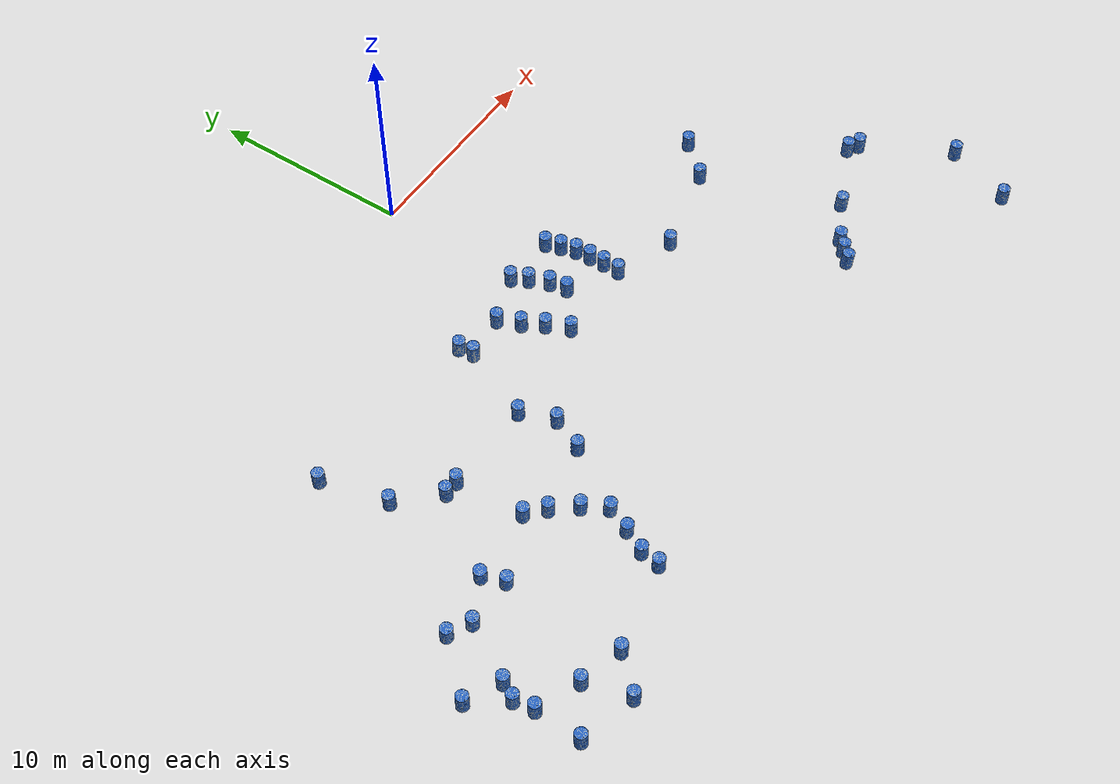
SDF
<sdf version="1.6">
 <world name="default">
  <model name="barrel_16">
   <link name="link">
    <inertial>
     <mass>500</mass>
     <inertia><ixx>51.2096</ixx><iyy>51.2096</iyy><izz>25</izz><ixy>0</ixy><ixz>0</ixz><iyz>0</iyz></inertia>
    </inertial>
    <collision name="collision">
     <geometry><mesh><uri>model://barrel/meshes/barrel.dae</uri><scale>1 1 1</scale></mesh></geometry>
    </collision>
    <visual name="visual">
     <geometry><mesh><uri>model://barrel/meshes/barrel.dae</uri><scale>1 1 1</scale></mesh></geometry>
    </visual>
   </link>
   <pose>-6.64602 -12.0896 -0.065877 0.021904 -0.000621 -0.000895</pose>
  </model>
  <model name="barrel_17">
   <link name="link">
    <inertial>
     <mass>500</mass>
     <inertia><ixx>51.2096</ixx><iyy>51.2096</iyy><izz>25</izz><ixy>0</ixy><ixz>0</ixz><iyz>0</iyz></inertia>
    </inertial>
    <collision name="collision">
     <geometry><mesh><uri>model://barrel/meshes/barrel.dae</uri><scale>1 1 1</scale></mesh></geometry>
    </collision>
    <visual name="visual">
     <geometry><mesh><uri>model://barrel/meshes/barrel.dae</uri><scale>1 1 1</scale></mesh></geometry>
    </visual>
   </link>
   <pose>-6.01499 -13.7526 -0.092026 0.011651 -0.003126 -0.001076</pose>
  </model>
  <model name="barrel_21">
   <link name="link">
    <inertial>
     <mass>500</mass>
     <inertia><ixx>51.2096</ixx><iyy>51.2096</iyy><izz>25</izz><ixy>0</ixy><ixz>0</ixz><iyz>0</iyz></inertia>
    </inertial>
    <collision name="collision">
     <geometry><mesh><uri>model://barrel/meshes/barrel.dae</uri><scale>1 1 1</scale></mesh></geometry>
    </collision>
    <visual name="visual">
     <geometry><mesh><uri>model://barrel/meshes/barrel.dae</uri><scale>1 1 1</scale></mesh></geometry>
    </visual>
   </link>
   <pose>11.2531 -9.72098 0.001207 -0.000622 0.003513 1.9e-05</pose>
  </model>
  <model name="barrel_22">
   <link name="link">
    <inertial>
     <mass>500</mass>
     <inertia><ixx>51.2096</ixx><iyy>51.2096</iyy><izz>25</izz><ixy>0</ixy><ixz>0</ixz><iyz>0</iyz></inertia>
    </inertial>
    <collision name="collision">
     <geometry><mesh><uri>model://barrel/meshes/barrel.dae</uri><scale>1 1 1</scale></mesh></geometry>
    </collision>
    <visual name="visual">
     <geometry><mesh><uri>model://barrel/meshes/barrel.dae</uri><scale>1 1 1</scale></mesh></geometry>
    </visual>
   </link>
   <pose>15.4375 -16.2895 -0.228445 0.025489 0.015645 0.000221</pose>
  </model>
  <model name="barrel_23">
   <link name="link">
    <inertial>
     <mass>500</mass>
     <inertia><ixx>51.2096</ixx><iyy>51.2096</iyy><izz>25</izz><ixy>0</ixy><ixz>0</ixz><iyz>0</iyz></inertia>
    </inertial>
    <collision name="collision">
     <geometry><mesh><uri>model://barrel/meshes/barrel.dae</uri><scale>1 1 1</scale></mesh></geometry>
    </collision>
    <visual name="visual">
     <geometry><mesh><uri>model://barrel/meshes/barrel.dae</uri><scale>1 1 1</scale></mesh></geometry>
    </visual>
   </link>
   <pose>15.9884 -16.6115 -0.243718 0.024704 0.011043 0.004901</pose>
  </model>
  <model name="barrel_24">
   <link name="link">
    <inertial>
     <mass>500</mass>
     <inertia><ixx>51.2096</ixx><iyy>51.2096</iyy><izz>25</izz><ixy>0</ixy><ixz>0</ixz><iyz>0</iyz></inertia>
    </inertial>
    <collision name="collision">
     <geometry><mesh><uri>model://barrel/meshes/barrel.dae</uri><scale>1 1 1</scale></mesh></geometry>
    </collision>
    <visual name="visual">
     <geometry><mesh><uri>model://barrel/meshes/barrel.dae</uri><scale>1 1 1</scale></mesh></geometry>
    </visual>
   </link>
   <pose>18.3608 -20.6973 -0.45242 0.015842 0.026169 -0.001995</pose>
  </model>
  <model name="barrel_25">
   <link name="link">
    <inertial>
     <mass>500</mass>
     <inertia><ixx>51.2096</ixx><iyy>51.2096</iyy><izz>25</izz><ixy>0</ixy><ixz>0</ixz><iyz>0</iyz></inertia>
    </inertial>
    <collision name="collision">
     <geometry><mesh><uri>model://barrel/meshes/barrel.dae</uri><scale>1 1 1</scale></mesh></geometry>
    </collision>
    <visual name="visual">
     <geometry><mesh><uri>model://barrel/meshes/barrel.dae</uri><scale>1 1 1</scale></mesh></geometry>
    </visual>
   </link>
   <pose>17.0741 -23.9449 -0.466777 0.016096 0.014441 -0.00362</pose>
  </model>
  <model name="barrel_26">
   <link name="link">
    <inertial>
     <mass>500</mass>
     <inertia><ixx>51.2096</ixx><iyy>51.2096</iyy><izz>25</izz><ixy>0</ixy><ixz>0</ixz><iyz>0</iyz></inertia>
    </inertial>
    <collision name="collision">
     <geometry><mesh><uri>model://barrel/meshes/barrel.dae</uri><scale>1 1 1</scale></mesh></geometry>
    </collision>
    <visual name="visual">
     <geometry><mesh><uri>model://barrel/meshes/barrel.dae</uri><scale>1 1 1</scale></mesh></geometry>
    </visual>
   </link>
   <pose>12.1238 -17.7903 -0.194908 0.052107 0.034637 -0.033032</pose>
  </model>
  <model name="barrel_27">
   <link name="link">
    <inertial>
     <mass>500</mass>
     <inertia><ixx>51.2096</ixx><iyy>51.2096</iyy><izz>25</izz><ixy>0</ixy><ixz>0</ixz><iyz>0</iyz></inertia>
    </inertial>
    <collision name="collision">
     <geometry><mesh><uri>model://barrel/meshes/barrel.dae</uri><scale>1 1 1</scale></mesh></geometry>
    </collision>
    <visual name="visual">
     <geometry><mesh><uri>model://barrel/meshes/barrel.dae</uri><scale>1 1 1</scale></mesh></geometry>
    </visual>
   </link>
   <pose>10.1544 -18.8418 -0.192373 0.050254 0.017038 -0.013136</pose>
  </model>
  <model name="barrel_28">
   <link name="link">
    <inertial>
     <mass>500</mass>
     <inertia><ixx>51.2096</ixx><iyy>51.2096</iyy><izz>25</izz><ixy>0</ixy><ixz>0</ixz><iyz>0</iyz></inertia>
    </inertial>
    <collision name="collision">
     <geometry><mesh><uri>model://barrel/meshes/barrel.dae</uri><scale>1 1 1</scale></mesh></geometry>
    </collision>
    <visual name="visual">
     <geometry><mesh><uri>model://barrel/meshes/barrel.dae</uri><scale>1 1 1</scale></mesh></geometry>
    </visual>
   </link>
   <pose>9.65125 -19.314 -0.207993 0.050227 0.017133 -0.015108</pose>
  </model>
  <model name="barrel_29">
   <link name="link">
    <inertial>
     <mass>500</mass>
     <inertia><ixx>51.2096</ixx><iyy>51.2096</iyy><izz>25</izz><ixy>0</ixy><ixz>0</ixz><iyz>0</iyz></inertia>
    </inertial>
    <collision name="collision">
     <geometry><mesh><uri>model://barrel/meshes/barrel.dae</uri><scale>1 1 1</scale></mesh></geometry>
    </collision>
    <visual name="visual">
     <geometry><mesh><uri>model://barrel/meshes/barrel.dae</uri><scale>1 1 1</scale></mesh></geometry>
    </visual>
   </link>
   <pose>9.18372 -19.7763 -0.227088 0.070803 0.016683 -0.010783</pose>
  </model>
  <model name="barrel_30">
   <link name="link">
    <inertial>
     <mass>500</mass>
     <inertia><ixx>51.2096</ixx><iyy>51.2096</iyy><izz>25</izz><ixy>0</ixy><ixz>0</ixz><iyz>0</iyz></inertia>
    </inertial>
    <collision name="collision">
     <geometry><mesh><uri>model://barrel/meshes/barrel.dae</uri><scale>1 1 1</scale></mesh></geometry>
    </collision>
    <visual name="visual">
     <geometry><mesh><uri>model://barrel/meshes/barrel.dae</uri><scale>1 1 1</scale></mesh></geometry>
    </visual>
   </link>
   <pose>9.74218 -11.3225 0.02096 -0.012189 0.00495 -1.7e-05</pose>
  </model>
  <model name="barrel_31">
   <link name="link">
    <inertial>
     <mass>500</mass>
     <inertia><ixx>51.2096</ixx><iyy>51.2096</iyy><izz>25</izz><ixy>0</ixy><ixz>0</ixz><iyz>0</iyz></inertia>
    </inertial>
    <collision name="collision">
     <geometry><mesh><uri>model://barrel/meshes/barrel.dae</uri><scale>1 1 1</scale></mesh></geometry>
    </collision>
    <visual name="visual">
     <geometry><mesh><uri>model://barrel/meshes/barrel.dae</uri><scale>1 1 1</scale></mesh></geometry>
    </visual>
   </link>
   <pose>5.39296 -12.4014 0.018129 0.010171 -0.002475 7.6e-05</pose>
  </model>
  <model name="barrel_32">
   <link name="link">
    <inertial>
     <mass>500</mass>
     <inertia><ixx>51.2096</ixx><iyy>51.2096</iyy><izz>25</izz><ixy>0</ixy><ixz>0</ixz><iyz>0</iyz></inertia>
    </inertial>
    <collision name="collision">
     <geometry><mesh><uri>model://barrel/meshes/barrel.dae</uri><scale>1 1 1</scale></mesh></geometry>
    </collision>
    <visual name="visual">
     <geometry><mesh><uri>model://barrel/meshes/barrel.dae</uri><scale>1 1 1</scale></mesh></geometry>
    </visual>
   </link>
   <pose>2.55652 -11.3385 0.015993 0.012526 -0.012887 2.5e-05</pose>
  </model>
  <model name="barrel_33">
   <link name="link">
    <inertial>
     <mass>500</mass>
     <inertia><ixx>51.2096</ixx><iyy>51.2096</iyy><izz>25</izz><ixy>0</ixy><ixz>0</ixz><iyz>0</iyz></inertia>
    </inertial>
    <collision name="collision">
     <geometry><mesh><uri>model://barrel/meshes/barrel.dae</uri><scale>1 1 1</scale></mesh></geometry>
    </collision>
    <visual name="visual">
     <geometry><mesh><uri>model://barrel/meshes/barrel.dae</uri><scale>1 1 1</scale></mesh></geometry>
    </visual>
   </link>
   <pose>2.56652 -10.5277 0.02611 0.012632 -0.011815 -2e-06</pose>
  </model>
  <model name="barrel_34">
   <link name="link">
    <inertial>
     <mass>500</mass>
     <inertia><ixx>51.2096</ixx><iyy>51.2096</iyy><izz>25</izz><ixy>0</ixy><ixz>0</ixz><iyz>0</iyz></inertia>
    </inertial>
    <collision name="collision">
     <geometry><mesh><uri>model://barrel/meshes/barrel.dae</uri><scale>1 1 1</scale></mesh></geometry>
    </collision>
    <visual name="visual">
     <geometry><mesh><uri>model://barrel/meshes/barrel.dae</uri><scale>1 1 1</scale></mesh></geometry>
    </visual>
   </link>
   <pose>2.52148 -9.78355 0.036837 0.01914 -0.013142 -0.000263</pose>
  </model>
  <model name="barrel_35">
   <link name="link">
    <inertial>
     <mass>500</mass>
     <inertia><ixx>51.2096</ixx><iyy>51.2096</iyy><izz>25</izz><ixy>0</ixy><ixz>0</ixz><iyz>0</iyz></inertia>
    </inertial>
    <collision name="collision">
     <geometry><mesh><uri>model://barrel/meshes/barrel.dae</uri><scale>1 1 1</scale></mesh></geometry>
    </collision>
    <visual name="visual">
     <geometry><mesh><uri>model://barrel/meshes/barrel.dae</uri><scale>1 1 1</scale></mesh></geometry>
    </visual>
   </link>
   <pose>2.41641 -8.98886 0.052496 0.02482 -0.009879 -0.161014</pose>
  </model>
  <model name="barrel_36">
   <link name="link">
    <inertial>
     <mass>500</mass>
     <inertia><ixx>51.2096</ixx><iyy>51.2096</iyy><izz>25</izz><ixy>0</ixy><ixz>0</ixz><iyz>0</iyz></inertia>
    </inertial>
    <collision name="collision">
     <geometry><mesh><uri>model://barrel/meshes/barrel.dae</uri><scale>1 1 1</scale></mesh></geometry>
    </collision>
    <visual name="visual">
     <geometry><mesh><uri>model://barrel/meshes/barrel.dae</uri><scale>1 1 1</scale></mesh></geometry>
    </visual>
   </link>
   <pose>2.18789 -8.24474 0.066415 0.025572 -0.007711 -0.246792</pose>
  </model>
  <model name="barrel_37">
   <link name="link">
    <inertial>
     <mass>500</mass>
     <inertia><ixx>51.2096</ixx><iyy>51.2096</iyy><izz>25</izz><ixy>0</ixy><ixz>0</ixz><iyz>0</iyz></inertia>
    </inertial>
    <collision name="collision">
     <geometry><mesh><uri>model://barrel/meshes/barrel.dae</uri><scale>1 1 1</scale></mesh></geometry>
    </collision>
    <visual name="visual">
     <geometry><mesh><uri>model://barrel/meshes/barrel.dae</uri><scale>1 1 1</scale></mesh></geometry>
    </visual>
   </link>
   <pose>2.00718 -7.6034 0.074873 0.005774 -0.016323 -0.021645</pose>
  </model>
  <model name="barrel_38">
   <link name="link">
    <inertial>
     <mass>500</mass>
     <inertia><ixx>51.2096</ixx><iyy>51.2096</iyy><izz>25</izz><ixy>0</ixy><ixz>0</ixz><iyz>0</iyz></inertia>
    </inertial>
    <collision name="collision">
     <geometry><mesh><uri>model://barrel/meshes/barrel.dae</uri><scale>1 1 1</scale></mesh></geometry>
    </collision>
    <visual name="visual">
     <geometry><mesh><uri>model://barrel/meshes/barrel.dae</uri><scale>1 1 1</scale></mesh></geometry>
    </visual>
   </link>
   <pose>0.345676 -9.95051 0.00928 0.015744 -0.011044 -7e-06</pose>
  </model>
  <model name="barrel_39">
   <link name="link">
    <inertial>
     <mass>500</mass>
     <inertia><ixx>51.2096</ixx><iyy>51.2096</iyy><izz>25</izz><ixy>0</ixy><ixz>0</ixz><iyz>0</iyz></inertia>
    </inertial>
    <collision name="collision">
     <geometry><mesh><uri>model://barrel/meshes/barrel.dae</uri><scale>1 1 1</scale></mesh></geometry>
    </collision>
    <visual name="visual">
     <geometry><mesh><uri>model://barrel/meshes/barrel.dae</uri><scale>1 1 1</scale></mesh></geometry>
    </visual>
   </link>
   <pose>0.194539 -9.10177 0.021509 0.016684 -0.010967 6.1e-05</pose>
  </model>
  <model name="barrel_40">
   <link name="link">
    <inertial>
     <mass>500</mass>
     <inertia><ixx>51.2096</ixx><iyy>51.2096</iyy><izz>25</izz><ixy>0</ixy><ixz>0</ixz><iyz>0</iyz></inertia>
    </inertial>
    <collision name="collision">
     <geometry><mesh><uri>model://barrel/meshes/barrel.dae</uri><scale>1 1 1</scale></mesh></geometry>
    </collision>
    <visual name="visual">
     <geometry><mesh><uri>model://barrel/meshes/barrel.dae</uri><scale>1 1 1</scale></mesh></geometry>
    </visual>
   </link>
   <pose>-0.196327 -8.1814 0.035138 0.022914 -0.013727 -0.000318</pose>
  </model>
  <model name="barrel_41">
   <link name="link">
    <inertial>
     <mass>500</mass>
     <inertia><ixx>51.2096</ixx><iyy>51.2096</iyy><izz>25</izz><ixy>0</ixy><ixz>0</ixz><iyz>0</iyz></inertia>
    </inertial>
    <collision name="collision">
     <geometry><mesh><uri>model://barrel/meshes/barrel.dae</uri><scale>1 1 1</scale></mesh></geometry>
    </collision>
    <visual name="visual">
     <geometry><mesh><uri>model://barrel/meshes/barrel.dae</uri><scale>1 1 1</scale></mesh></geometry>
    </visual>
   </link>
   <pose>-0.593189 -7.45294 0.033692 0.006171 -0.013896 0.000365</pose>
  </model>
  <model name="barrel_45">
   <link name="link">
    <inertial>
     <mass>500</mass>
     <inertia><ixx>51.2096</ixx><iyy>51.2096</iyy><izz>25</izz><ixy>0</ixy><ixz>0</ixz><iyz>0</iyz></inertia>
    </inertial>
    <collision name="collision">
     <geometry><mesh><uri>model://barrel/meshes/barrel.dae</uri><scale>1 1 1</scale></mesh></geometry>
    </collision>
    <visual name="visual">
     <geometry><mesh><uri>model://barrel/meshes/barrel.dae</uri><scale>1 1 1</scale></mesh></geometry>
    </visual>
   </link>
   <pose>-1.45042 -11.4062 -0.033602 0.015768 -0.011614 0.001184</pose>
  </model>
  <model name="barrel_46">
   <link name="link">
    <inertial>
     <mass>500</mass>
     <inertia><ixx>51.2096</ixx><iyy>51.2096</iyy><izz>25</izz><ixy>0</ixy><ixz>0</ixz><iyz>0</iyz></inertia>
    </inertial>
    <collision name="collision">
     <geometry><mesh><uri>model://barrel/meshes/barrel.dae</uri><scale>1 1 1</scale></mesh></geometry>
    </collision>
    <visual name="visual">
     <geometry><mesh><uri>model://barrel/meshes/barrel.dae</uri><scale>1 1 1</scale></mesh></geometry>
    </visual>
   </link>
   <pose>-1.94725 -10.3264 -0.019928 0.019597 -0.007616 0.000982</pose>
  </model>
  <model name="barrel_47">
   <link name="link">
    <inertial>
     <mass>500</mass>
     <inertia><ixx>51.2096</ixx><iyy>51.2096</iyy><izz>25</izz><ixy>0</ixy><ixz>0</ixz><iyz>0</iyz></inertia>
    </inertial>
    <collision name="collision">
     <geometry><mesh><uri>model://barrel/meshes/barrel.dae</uri><scale>1 1 1</scale></mesh></geometry>
    </collision>
    <visual name="visual">
     <geometry><mesh><uri>model://barrel/meshes/barrel.dae</uri><scale>1 1 1</scale></mesh></geometry>
    </visual>
   </link>
   <pose>-2.50828 -9.3786 -0.00491 0.020369 -0.007217 0.000659</pose>
  </model>
  <model name="barrel_48">
   <link name="link">
    <inertial>
     <mass>500</mass>
     <inertia><ixx>51.2096</ixx><iyy>51.2096</iyy><izz>25</izz><ixy>0</ixy><ixz>0</ixz><iyz>0</iyz></inertia>
    </inertial>
    <collision name="collision">
     <geometry><mesh><uri>model://barrel/meshes/barrel.dae</uri><scale>1 1 1</scale></mesh></geometry>
    </collision>
    <visual name="visual">
     <geometry><mesh><uri>model://barrel/meshes/barrel.dae</uri><scale>1 1 1</scale></mesh></geometry>
    </visual>
   </link>
   <pose>-2.95911 -8.31217 0.018698 0.030407 0.002928 -0.001487</pose>
  </model>
  <model name="barrel_49">
   <link name="link">
    <inertial>
     <mass>500</mass>
     <inertia><ixx>51.2096</ixx><iyy>51.2096</iyy><izz>25</izz><ixy>0</ixy><ixz>0</ixz><iyz>0</iyz></inertia>
    </inertial>
    <collision name="collision">
     <geometry><mesh><uri>model://barrel/meshes/barrel.dae</uri><scale>1 1 1</scale></mesh></geometry>
    </collision>
    <visual name="visual">
     <geometry><mesh><uri>model://barrel/meshes/barrel.dae</uri><scale>1 1 1</scale></mesh></geometry>
    </visual>
   </link>
   <pose>-5.12662 -8.55463 0.022376 0.032821 0.006745 0.00065</pose>
  </model>
  <model name="barrel_50">
   <link name="link">
    <inertial>
     <mass>500</mass>
     <inertia><ixx>51.2096</ixx><iyy>51.2096</iyy><izz>25</izz><ixy>0</ixy><ixz>0</ixz><iyz>0</iyz></inertia>
    </inertial>
    <collision name="collision">
     <geometry><mesh><uri>model://barrel/meshes/barrel.dae</uri><scale>1 1 1</scale></mesh></geometry>
    </collision>
    <visual name="visual">
     <geometry><mesh><uri>model://barrel/meshes/barrel.dae</uri><scale>1 1 1</scale></mesh></geometry>
    </visual>
   </link>
   <pose>-5.21125 -7.86601 0.047058 0.038472 0.003077 0.096041</pose>
  </model>
  <model name="barrel_51">
   <link name="link">
    <inertial>
     <mass>500</mass>
     <inertia><ixx>51.2096</ixx><iyy>51.2096</iyy><izz>25</izz><ixy>0</ixy><ixz>0</ixz><iyz>0</iyz></inertia>
    </inertial>
    <collision name="collision">
     <geometry><mesh><uri>model://barrel/meshes/barrel.dae</uri><scale>1 1 1</scale></mesh></geometry>
    </collision>
    <visual name="visual">
     <geometry><mesh><uri>model://barrel/meshes/barrel.dae</uri><scale>1 1 1</scale></mesh></geometry>
    </visual>
   </link>
   <pose>-6.72808 -15.3163 -0.115707 0.014954 -0.00473 -0.000122</pose>
  </model>
  <model name="barrel_52">
   <link name="link">
    <inertial>
     <mass>500</mass>
     <inertia><ixx>51.2096</ixx><iyy>51.2096</iyy><izz>25</izz><ixy>0</ixy><ixz>0</ixz><iyz>0</iyz></inertia>
    </inertial>
    <collision name="collision">
     <geometry><mesh><uri>model://barrel/meshes/barrel.dae</uri><scale>1 1 1</scale></mesh></geometry>
    </collision>
    <visual name="visual">
     <geometry><mesh><uri>model://barrel/meshes/barrel.dae</uri><scale>1 1 1</scale></mesh></geometry>
    </visual>
   </link>
   <pose>-10.8975 -15.3032 -0.124026 0.033459 0.001308 -0.004688</pose>
  </model>
  <model name="barrel_53">
   <link name="link">
    <inertial>
     <mass>500</mass>
     <inertia><ixx>51.2096</ixx><iyy>51.2096</iyy><izz>25</izz><ixy>0</ixy><ixz>0</ixz><iyz>0</iyz></inertia>
    </inertial>
    <collision name="collision">
     <geometry><mesh><uri>model://barrel/meshes/barrel.dae</uri><scale>1 1 1</scale></mesh></geometry>
    </collision>
    <visual name="visual">
     <geometry><mesh><uri>model://barrel/meshes/barrel.dae</uri><scale>1 1 1</scale></mesh></geometry>
    </visual>
   </link>
   <pose>-10.0733 -16.0535 -0.139344 0.027143 -0.010919 -0.000439</pose>
  </model>
  <model name="barrel_54">
   <link name="link">
    <inertial>
     <mass>500</mass>
     <inertia><ixx>51.2096</ixx><iyy>51.2096</iyy><izz>25</izz><ixy>0</ixy><ixz>0</ixz><iyz>0</iyz></inertia>
    </inertial>
    <collision name="collision">
     <geometry><mesh><uri>model://barrel/meshes/barrel.dae</uri><scale>1 1 1</scale></mesh></geometry>
    </collision>
    <visual name="visual">
     <geometry><mesh><uri>model://barrel/meshes/barrel.dae</uri><scale>1 1 1</scale></mesh></geometry>
    </visual>
   </link>
   <pose>-9.21448 -17.1241 -0.161573 0.048807 -0.01323 -0.032807</pose>
  </model>
  <model name="barrel_55">
   <link name="link">
    <inertial>
     <mass>500</mass>
     <inertia><ixx>51.2096</ixx><iyy>51.2096</iyy><izz>25</izz><ixy>0</ixy><ixz>0</ixz><iyz>0</iyz></inertia>
    </inertial>
    <collision name="collision">
     <geometry><mesh><uri>model://barrel/meshes/barrel.dae</uri><scale>1 1 1</scale></mesh></geometry>
    </collision>
    <visual name="visual">
     <geometry><mesh><uri>model://barrel/meshes/barrel.dae</uri><scale>1 1 1</scale></mesh></geometry>
    </visual>
   </link>
   <pose>-8.55343 -18.2093 -0.206495 0.082826 -0.037746 -0.033733</pose>
  </model>
  <model name="barrel_56">
   <link name="link">
    <inertial>
     <mass>500</mass>
     <inertia><ixx>51.2096</ixx><iyy>51.2096</iyy><izz>25</izz><ixy>0</ixy><ixz>0</ixz><iyz>0</iyz></inertia>
    </inertial>
    <collision name="collision">
     <geometry><mesh><uri>model://barrel/meshes/barrel.dae</uri><scale>1 1 1</scale></mesh></geometry>
    </collision>
    <visual name="visual">
     <geometry><mesh><uri>model://barrel/meshes/barrel.dae</uri><scale>1 1 1</scale></mesh></geometry>
    </visual>
   </link>
   <pose>-9.00839 -19.3575 -0.309523 0.072064 -0.03823 -0.050175</pose>
  </model>
  <model name="barrel_57">
   <link name="link">
    <inertial>
     <mass>500</mass>
     <inertia><ixx>51.2096</ixx><iyy>51.2096</iyy><izz>25</izz><ixy>0</ixy><ixz>0</ixz><iyz>0</iyz></inertia>
    </inertial>
    <collision name="collision">
     <geometry><mesh><uri>model://barrel/meshes/barrel.dae</uri><scale>1 1 1</scale></mesh></geometry>
    </collision>
    <visual name="visual">
     <geometry><mesh><uri>model://barrel/meshes/barrel.dae</uri><scale>1 1 1</scale></mesh></geometry>
    </visual>
   </link>
   <pose>-9.55684 -20.3951 -0.401337 0.057824 -0.034974 -0.187496</pose>
  </model>
  <model name="barrel_58">
   <link name="link">
    <inertial>
     <mass>500</mass>
     <inertia><ixx>51.2096</ixx><iyy>51.2096</iyy><izz>25</izz><ixy>0</ixy><ixz>0</ixz><iyz>0</iyz></inertia>
    </inertial>
    <collision name="collision">
     <geometry><mesh><uri>model://barrel/meshes/barrel.dae</uri><scale>1 1 1</scale></mesh></geometry>
    </collision>
    <visual name="visual">
     <geometry><mesh><uri>model://barrel/meshes/barrel.dae</uri><scale>1 1 1</scale></mesh></geometry>
    </visual>
   </link>
   <pose>-9.59353 -21.4303 -0.442766 0.030145 -0.046267 0.080838</pose>
  </model>
  <model name="barrel_59">
   <link name="link">
    <inertial>
     <mass>500</mass>
     <inertia><ixx>51.2096</ixx><iyy>51.2096</iyy><izz>25</izz><ixy>0</ixy><ixz>0</ixz><iyz>0</iyz></inertia>
    </inertial>
    <collision name="collision">
     <geometry><mesh><uri>model://barrel/meshes/barrel.dae</uri><scale>1 1 1</scale></mesh></geometry>
    </collision>
    <visual name="visual">
     <geometry><mesh><uri>model://barrel/meshes/barrel.dae</uri><scale>1 1 1</scale></mesh></geometry>
    </visual>
   </link>
   <pose>-13.875 -22.3191 -0.575805 0.002163 -0.002343 -0.000245</pose>
  </model>
  <model name="barrel_60">
   <link name="link">
    <inertial>
     <mass>500</mass>
     <inertia><ixx>51.2096</ixx><iyy>51.2096</iyy><izz>25</izz><ixy>0</ixy><ixz>0</ixz><iyz>0</iyz></inertia>
    </inertial>
    <collision name="collision">
     <geometry><mesh><uri>model://barrel/meshes/barrel.dae</uri><scale>1 1 1</scale></mesh></geometry>
    </collision>
    <visual name="visual">
     <geometry><mesh><uri>model://barrel/meshes/barrel.dae</uri><scale>1 1 1</scale></mesh></geometry>
    </visual>
   </link>
   <pose>-16.001 -21.75 -0.576353 -0.000706 -0.00103 0</pose>
  </model>
  <model name="barrel_61">
   <link name="link">
    <inertial>
     <mass>500</mass>
     <inertia><ixx>51.2096</ixx><iyy>51.2096</iyy><izz>25</izz><ixy>0</ixy><ixz>0</ixz><iyz>0</iyz></inertia>
    </inertial>
    <collision name="collision">
     <geometry><mesh><uri>model://barrel/meshes/barrel.dae</uri><scale>1 1 1</scale></mesh></geometry>
    </collision>
    <visual name="visual">
     <geometry><mesh><uri>model://barrel/meshes/barrel.dae</uri><scale>1 1 1</scale></mesh></geometry>
    </visual>
   </link>
   <pose>-15.407 -23.9259 -0.570871 -0.003247 0.001065 0.000139</pose>
  </model>
  <model name="barrel_62">
   <link name="link">
    <inertial>
     <mass>500</mass>
     <inertia><ixx>51.2096</ixx><iyy>51.2096</iyy><izz>25</izz><ixy>0</ixy><ixz>0</ixz><iyz>0</iyz></inertia>
    </inertial>
    <collision name="collision">
     <geometry><mesh><uri>model://barrel/meshes/barrel.dae</uri><scale>1 1 1</scale></mesh></geometry>
    </collision>
    <visual name="visual">
     <geometry><mesh><uri>model://barrel/meshes/barrel.dae</uri><scale>1 1 1</scale></mesh></geometry>
    </visual>
   </link>
   <pose>-18.1601 -23.218 -0.576827 3.7e-05 -0.00466 -3.8e-05</pose>
  </model>
  <model name="barrel_63">
   <link name="link">
    <inertial>
     <mass>500</mass>
     <inertia><ixx>51.2096</ixx><iyy>51.2096</iyy><izz>25</izz><ixy>0</ixy><ixz>0</ixz><iyz>0</iyz></inertia>
    </inertial>
    <collision name="collision">
     <geometry><mesh><uri>model://barrel/meshes/barrel.dae</uri><scale>1 1 1</scale></mesh></geometry>
    </collision>
    <visual name="visual">
     <geometry><mesh><uri>model://barrel/meshes/barrel.dae</uri><scale>1 1 1</scale></mesh></geometry>
    </visual>
   </link>
   <pose>-18.0689 -20.9104 -0.57506 0.003415 -0.001781 -0.000817</pose>
  </model>
  <model name="barrel_64">
   <link name="link">
    <inertial>
     <mass>500</mass>
     <inertia><ixx>51.2096</ixx><iyy>51.2096</iyy><izz>25</izz><ixy>0</ixy><ixz>0</ixz><iyz>0</iyz></inertia>
    </inertial>
    <collision name="collision">
     <geometry><mesh><uri>model://barrel/meshes/barrel.dae</uri><scale>1 1 1</scale></mesh></geometry>
    </collision>
    <visual name="visual">
     <geometry><mesh><uri>model://barrel/meshes/barrel.dae</uri><scale>1 1 1</scale></mesh></geometry>
    </visual>
   </link>
   <pose>-18.2219 -19.9213 -0.568826 0.007637 0.000363 -0.001259</pose>
  </model>
  <model name="barrel_65">
   <link name="link">
    <inertial>
     <mass>500</mass>
     <inertia><ixx>51.2096</ixx><iyy>51.2096</iyy><izz>25</izz><ixy>0</ixy><ixz>0</ixz><iyz>0</iyz></inertia>
    </inertial>
    <collision name="collision">
     <geometry><mesh><uri>model://barrel/meshes/barrel.dae</uri><scale>1 1 1</scale></mesh></geometry>
    </collision>
    <visual name="visual">
     <geometry><mesh><uri>model://barrel/meshes/barrel.dae</uri><scale>1 1 1</scale></mesh></geometry>
    </visual>
   </link>
   <pose>-17.763 -19.1232 -0.562893 0.007637 0.000353 -0.000114</pose>
  </model>
  <model name="barrel_66">
   <link name="link">
    <inertial>
     <mass>500</mass>
     <inertia><ixx>51.2096</ixx><iyy>51.2096</iyy><izz>25</izz><ixy>0</ixy><ixz>0</ixz><iyz>0</iyz></inertia>
    </inertial>
    <collision name="collision">
     <geometry><mesh><uri>model://barrel/meshes/barrel.dae</uri><scale>1 1 1</scale></mesh></geometry>
    </collision>
    <visual name="visual">
     <geometry><mesh><uri>model://barrel/meshes/barrel.dae</uri><scale>1 1 1</scale></mesh></geometry>
    </visual>
   </link>
   <pose>-19.4458 -18.3063 -0.550538 0.015452 0.001383 -0.000459</pose>
  </model>
  <model name="barrel_67">
   <link name="link">
    <inertial>
     <mass>500</mass>
     <inertia><ixx>51.2096</ixx><iyy>51.2096</iyy><izz>25</izz><ixy>0</ixy><ixz>0</ixz><iyz>0</iyz></inertia>
    </inertial>
    <collision name="collision">
     <geometry><mesh><uri>model://barrel/meshes/barrel.dae</uri><scale>1 1 1</scale></mesh></geometry>
    </collision>
    <visual name="visual">
     <geometry><mesh><uri>model://barrel/meshes/barrel.dae</uri><scale>1 1 1</scale></mesh></geometry>
    </visual>
   </link>
   <pose>-17.3115 -15.9549 -0.454608 0.06362 -0.032013 0.009863</pose>
  </model>
  <model name="barrel_68">
   <link name="link">
    <inertial>
     <mass>500</mass>
     <inertia><ixx>51.2096</ixx><iyy>51.2096</iyy><izz>25</izz><ixy>0</ixy><ixz>0</ixz><iyz>0</iyz></inertia>
    </inertial>
    <collision name="collision">
     <geometry><mesh><uri>model://barrel/meshes/barrel.dae</uri><scale>1 1 1</scale></mesh></geometry>
    </collision>
    <visual name="visual">
     <geometry><mesh><uri>model://barrel/meshes/barrel.dae</uri><scale>1 1 1</scale></mesh></geometry>
    </visual>
   </link>
   <pose>-16.2633 -16.5023 -0.452354 0.080051 -0.048839 -0.016406</pose>
  </model>
  <model name="barrel_69">
   <link name="link">
    <inertial>
     <mass>500</mass>
     <inertia><ixx>51.2096</ixx><iyy>51.2096</iyy><izz>25</izz><ixy>0</ixy><ixz>0</ixz><iyz>0</iyz></inertia>
    </inertial>
    <collision name="collision">
     <geometry><mesh><uri>model://barrel/meshes/barrel.dae</uri><scale>1 1 1</scale></mesh></geometry>
    </collision>
    <visual name="visual">
     <geometry><mesh><uri>model://barrel/meshes/barrel.dae</uri><scale>1 1 1</scale></mesh></geometry>
    </visual>
   </link>
   <pose>-13.9335 -16.579 -0.315382 0.113859 -0.062859 0.001258</pose>
  </model>
  <model name="barrel_70">
   <link name="link">
    <inertial>
     <mass>500</mass>
     <inertia><ixx>51.2096</ixx><iyy>51.2096</iyy><izz>25</izz><ixy>0</ixy><ixz>0</ixz><iyz>0</iyz></inertia>
    </inertial>
    <collision name="collision">
     <geometry><mesh><uri>model://barrel/meshes/barrel.dae</uri><scale>1 1 1</scale></mesh></geometry>
    </collision>
    <visual name="visual">
     <geometry><mesh><uri>model://barrel/meshes/barrel.dae</uri><scale>1 1 1</scale></mesh></geometry>
    </visual>
   </link>
   <pose>-14.2585 -15.6052 -0.255188 0.043754 -0.105938 0.194151</pose>
  </model>
  <model name="barrel_71">
   <link name="link">
    <inertial>
     <mass>500</mass>
     <inertia><ixx>51.2096</ixx><iyy>51.2096</iyy><izz>25</izz><ixy>0</ixy><ixz>0</ixz><iyz>0</iyz></inertia>
    </inertial>
    <collision name="collision">
     <geometry><mesh><uri>model://barrel/meshes/barrel.dae</uri><scale>1 1 1</scale></mesh></geometry>
    </collision>
    <visual name="visual">
     <geometry><mesh><uri>model://barrel/meshes/barrel.dae</uri><scale>1 1 1</scale></mesh></geometry>
    </visual>
   </link>
   <pose>-11.1102 -11.9742 -0.090632 0.012329 -0.007918 -3.4e-05</pose>
  </model>
  <model name="barrel_72">
   <link name="link">
    <inertial>
     <mass>500</mass>
     <inertia><ixx>51.2096</ixx><iyy>51.2096</iyy><izz>25</izz><ixy>0</ixy><ixz>0</ixz><iyz>0</iyz></inertia>
    </inertial>
    <collision name="collision">
     <geometry><mesh><uri>model://barrel/meshes/barrel.dae</uri><scale>1 1 1</scale></mesh></geometry>
    </collision>
    <visual name="visual">
     <geometry><mesh><uri>model://barrel/meshes/barrel.dae</uri><scale>1 1 1</scale></mesh></geometry>
    </visual>
   </link>
   <pose>-11.8484 -11.966 -0.095623 0.003464 -0.016576 -0.000463</pose>
  </model>
  <model name="barrel_73">
   <link name="link">
    <inertial>
     <mass>500</mass>
     <inertia><ixx>51.2096</ixx><iyy>51.2096</iyy><izz>25</izz><ixy>0</ixy><ixz>0</ixz><iyz>0</iyz></inertia>
    </inertial>
    <collision name="collision">
     <geometry><mesh><uri>model://barrel/meshes/barrel.dae</uri><scale>1 1 1</scale></mesh></geometry>
    </collision>
    <visual name="visual">
     <geometry><mesh><uri>model://barrel/meshes/barrel.dae</uri><scale>1 1 1</scale></mesh></geometry>
    </visual>
   </link>
   <pose>-13.5575 -10.21 -0.11724 -0.001988 -0.020732 -0.000578</pose>
  </model>
  <model name="barrel_102">
   <link name="link">
    <inertial>
     <mass>500</mass>
     <inertia><ixx>51.2096</ixx><iyy>51.2096</iyy><izz>25</izz><ixy>0</ixy><ixz>0</ixz><iyz>0</iyz></inertia>
    </inertial>
    <collision name="collision">
     <geometry><mesh><uri>model://barrel/meshes/barrel.dae</uri><scale>1 1 1</scale></mesh></geometry>
    </collision>
    <visual name="visual">
     <geometry><mesh><uri>model://barrel/meshes/barrel.dae</uri><scale>1 1 1</scale></mesh></geometry>
    </visual>
   </link>
   <pose>-14.3312 -6.97478 -0.121384 0.006406 -0.025102 -0.006061</pose>
  </model>
 </world>
</sdf>
